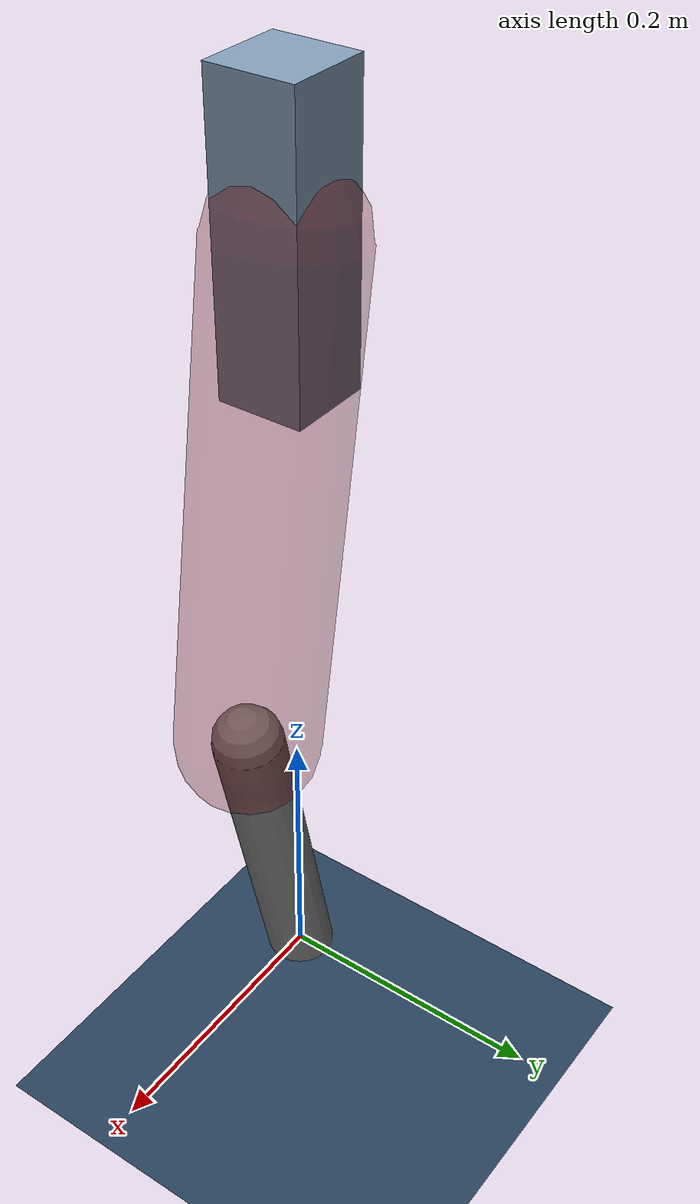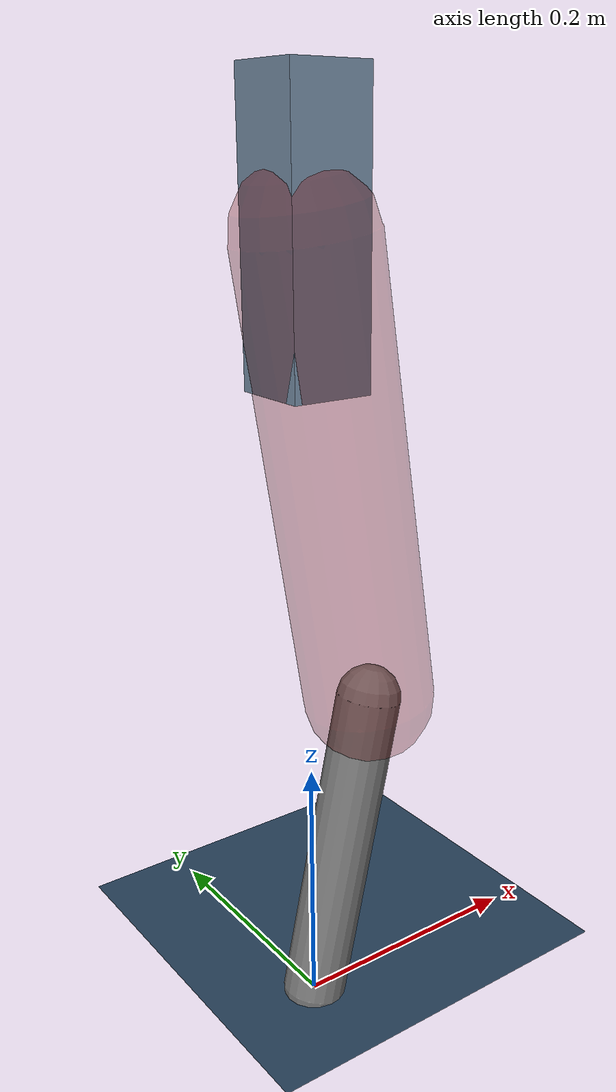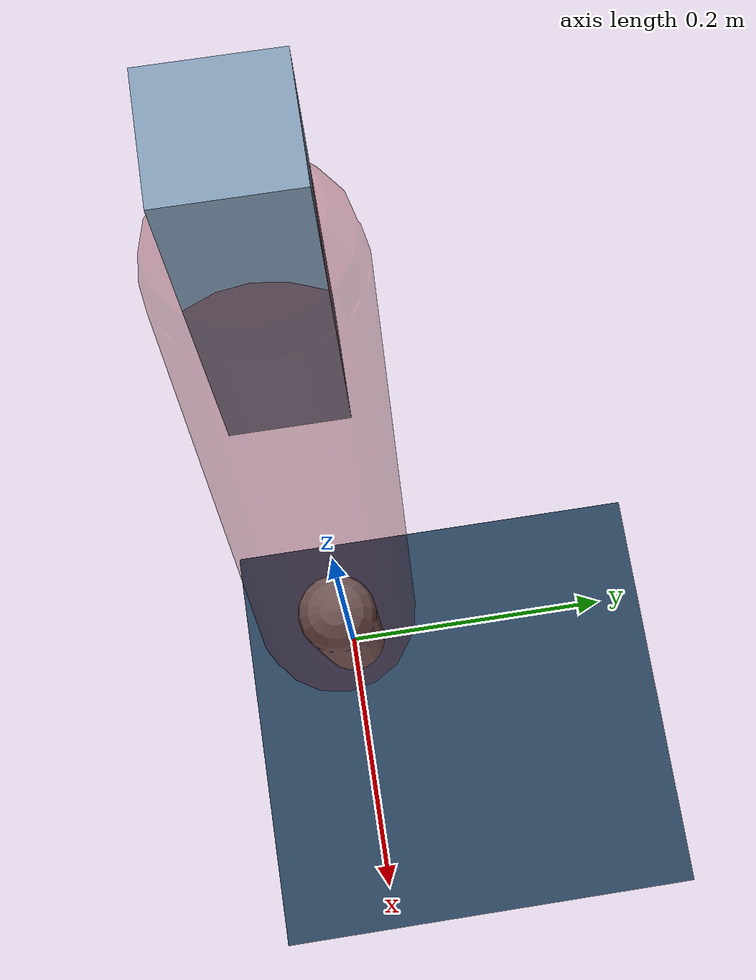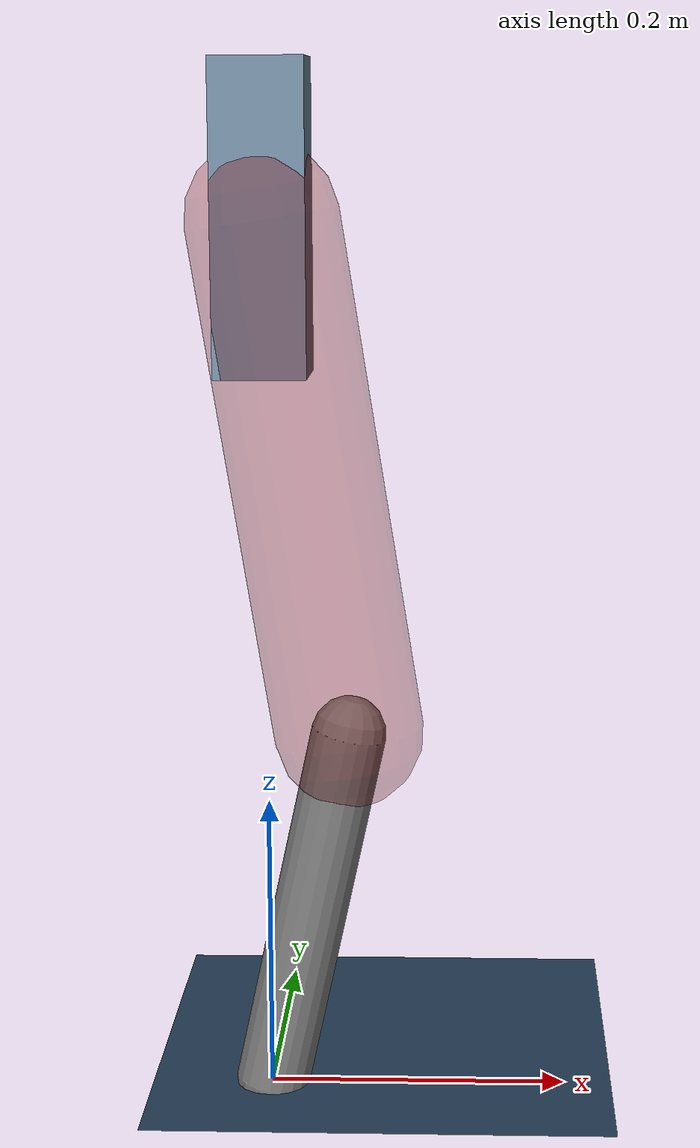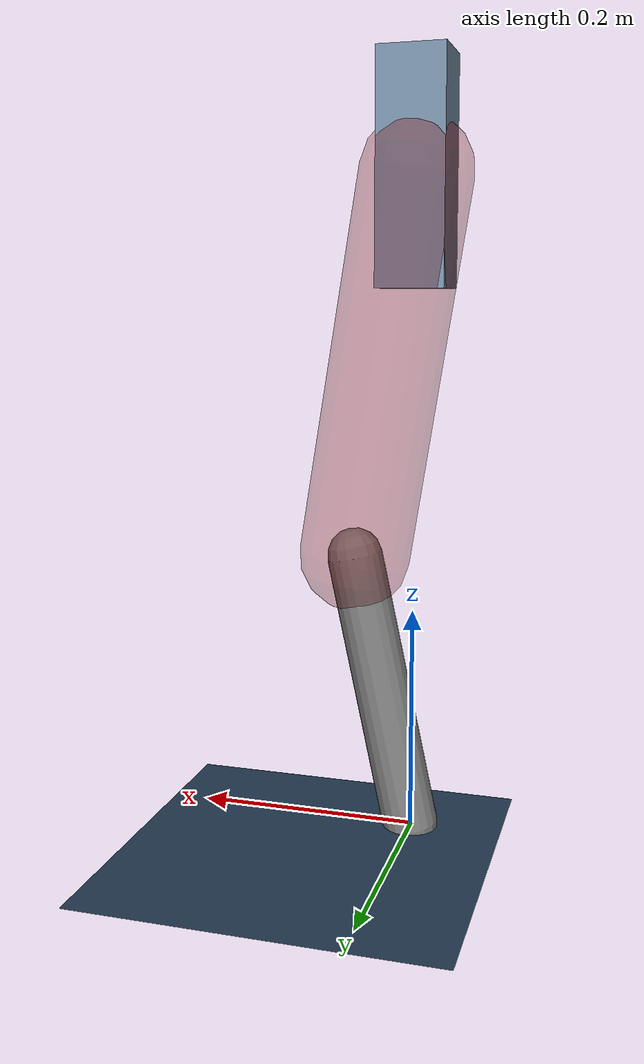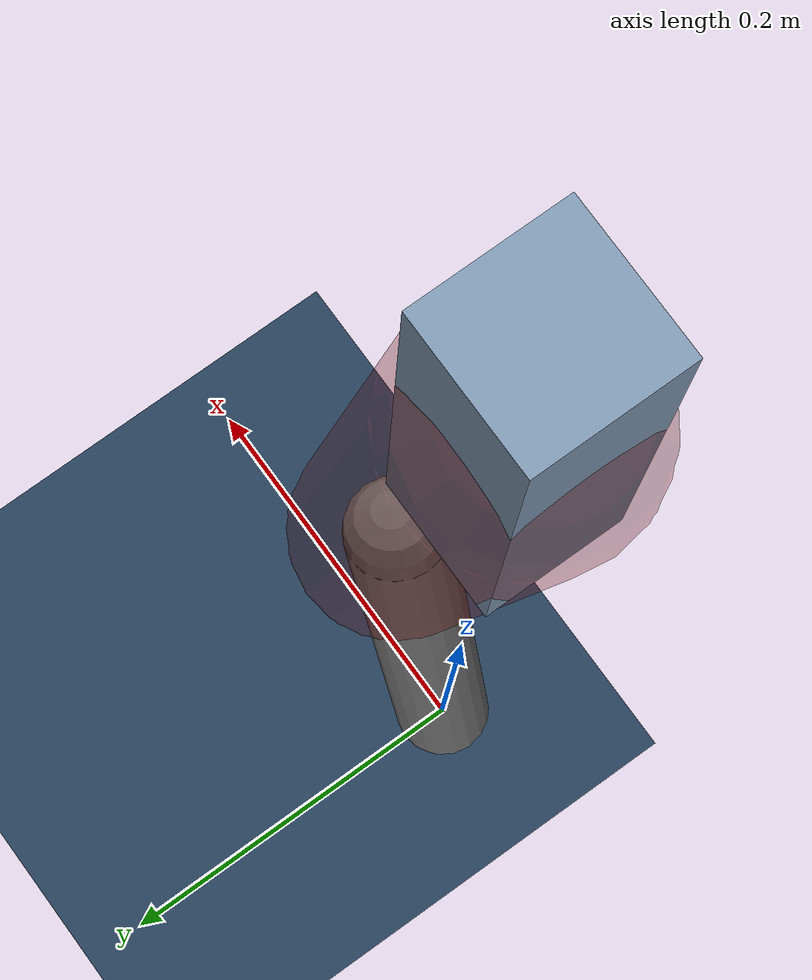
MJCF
<mujoco model="Hopper2D">
	<compiler inertiafromgeom="true" angle="radian" />
	<option timestep="0.001" integrator="implicit" cone="elliptic" solver="Newton" tolerance="1e-10" />

	<default>
		<geom contype="1" conaffinity="1" condim="3" friction="2 0.005 0.0001" solref="0.005 1" />
		<joint limited="true" damping="0.1" />
	</default>

	<asset>
		<texture name="skybox" type="skybox" builtin="gradient" rgb1=".4 .6 .8" rgb2="0 0 0" width="800" height="800" />
		<texture name="grid" type="2d" builtin="checker" rgb1=".1 .2 .3" rgb2=".2 .3 .4" width="300" height="300" mark="edge" markrgb=".2 .3 .4" />
		<material name="ground" texture="grid" texrepeat="1 1" texuniform="true" reflectance="0.1" />
		<material name="leg" rgba="0.5 0.6 0.7 1" />
	</asset>

	<worldbody>

		<geom name="floor" type="plane" size="5 5 0.25" material="ground" />

		<light directional="false" diffuse="0.8 0.8 0.8" specular="0.3 0.3 0.3" pos="0 0 2" dir="0 0 -1" />
		<light mode="targetbodycom" target="base" directional="false" diffuse="0.8 0.8 0.8" specular="0.3 0.3 0.3" pos="0 0 2" dir="0 0 -1" />

		<camera name="fixed" pos="0 -2 1" xyaxes="1 0 0 0 0 1" />
		<camera name="tracking" mode="trackcom" pos="0 -3 1" />

		<body name="root" pos="0 0 0.5865850772391712">
			<joint name="slide_x" type="slide" axis="1 0 0" range="-100 100" />
			<joint name="slide_z" type="slide" axis="0 0 1" range="0 10" />

			<body name="base" pos="0 0 0">
				<geom name="torso" type="box" size="0.03 0.03 0.1" mass="1.729" material="leg" />

				<body name="link1" pos="0 0 0" euler="0 1.4133095180849053 0">
					<joint type="hinge" axis="0 -1 0" pos="0 0 0" name="hinge1" limited="true" range="-3.14 3.14" stiffness="0" damping="0.1" />
					<geom name="thigh" type="capsule" fromto="0 0 0 0.34276412851008753 0 0" size="0.05" rgba="0.5 0 0 0.3" mass="1.106339559828245" />

					<body name="link2" pos="0.34276412851008753 0 0" euler="0 0.3708979006119577 0">
						<joint type="hinge" axis="0 -1 0" pos="0 0 0" name="hinge2" limited="true" range="-3.14 3.14" stiffness="0" damping="0.1" />
						<geom name="shank" type="capsule" fromto="0 0 0 0.25382094872908373 0 0" size="0.025" mass="0.44565675898326695" />

					</body>
				</body>
			</body>
		</body>
	</worldbody>

	<actuator>
		<motor name="torque1" joint="hinge1" ctrlrange="-77.55376774492154 77.55376774492154" ctrllimited="true" gear="1" />
		<motor name="torque2" joint="hinge2" ctrlrange="-31.22794897459704 31.22794897459704" ctrllimited="true" gear="1" />
	</actuator>
</mujoco>
